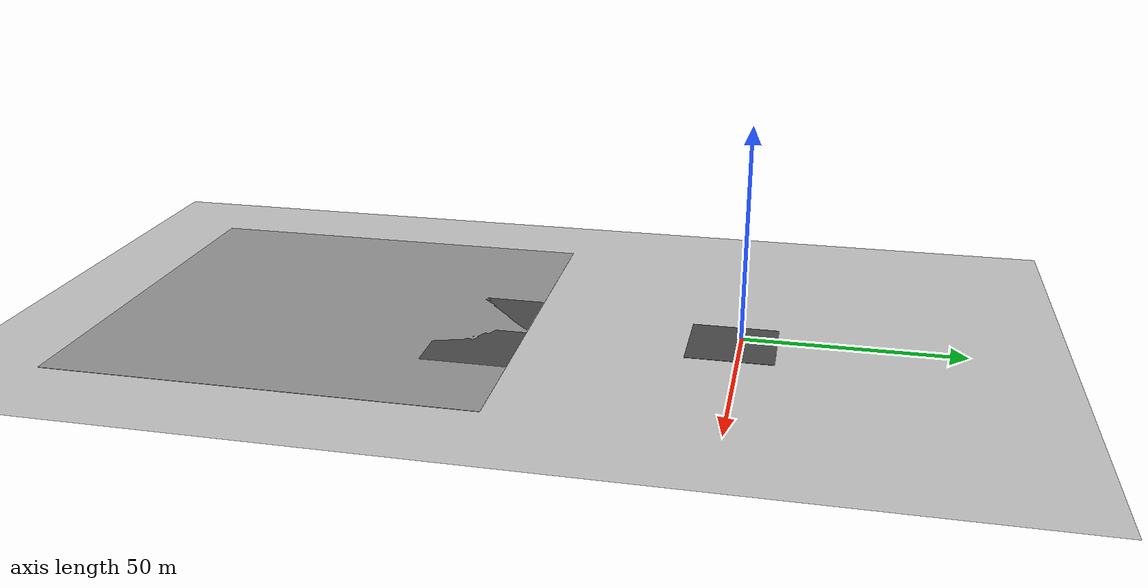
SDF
<sdf version="1.6">
 <world name="default">
  <model name="ground_plane">
   <static>1</static>
   <link name="link">
    <collision name="collision">
     <geometry><plane><normal>0 0 1</normal><size>100 100</size></plane></geometry>
     <surface><friction><ode><mu>100</mu><mu2>50</mu2></ode></friction></surface>
    </collision>
    <visual name="visual">
     <cast_shadows>0</cast_shadows>
     <geometry><plane><normal>0 0 1</normal><size>100 100</size></plane></geometry>
     <material>
      <script><uri>file://media/materials/scripts/gazebo.material</uri><name>Gazebo/Grey</name></script>
     </material>
    </visual>
   </link>
  </model>
  <model name="ground_plane_0">
   <static>1</static>
   <link name="link">
    <collision name="collision">
     <geometry><plane><normal>0 0 1</normal><size>100 100</size></plane></geometry>
     <surface><friction><ode><mu>100</mu><mu2>50</mu2></ode></friction></surface>
    </collision>
    <visual name="visual">
     <cast_shadows>0</cast_shadows>
     <geometry><plane><normal>0 0 1</normal><size>100 100</size></plane></geometry>
     <material>
      <script><uri>file://media/materials/scripts/gazebo.material</uri><name>Gazebo/Grey</name></script>
     </material>
    </visual>
   </link>
   <pose>-0.037273 -99.0745 0 0 -0 0</pose>
  </model>
  <model name="asphalt_plane">
   <static>1</static>
   <link name="link">
    <collision name="collision"><geometry><box><size>20 20 0.1</size></box></geometry></collision>
    <visual name="visual">
     <cast_shadows>0</cast_shadows>
     <geometry><box><size>20 20 0.1</size></box></geometry>
     <material>
      <script>
       <uri>model://asphalt_plane/materials/scripts</uri>
       <uri>model://asphalt_plane/materials/textures</uri>
       <name>vrc/asphalt</name>
      </script>
     </material>
    </visual>
   </link>
   <pose>3.33156 -1.84021 0 0 -0 0</pose>
  </model>
  <model name="asphalt_plane_18">
   <static>1</static>
   <link name="link">
    <collision name="collision"><geometry><box><size>20 20 0.1</size></box></geometry></collision>
    <visual name="visual">
     <cast_shadows>0</cast_shadows>
     <geometry><box><size>20 20 0.1</size></box></geometry>
     <material>
      <script>
       <uri>model://asphalt_plane/materials/scripts</uri>
       <uri>model://asphalt_plane/materials/textures</uri>
       <name>vrc/asphalt</name>
      </script>
     </material>
    </visual>
   </link>
   <pose>-2.55293 -59.3152 0 0 -0 0</pose>
  </model>
  <model name="asphalt_plane_19">
   <static>1</static>
   <link name="link">
    <collision name="collision"><geometry><box><size>20 20 0.1</size></box></geometry></collision>
    <visual name="visual">
     <cast_shadows>0</cast_shadows>
     <geometry><box><size>20 20 0.1</size></box></geometry>
     <material>
      <script>
       <uri>model://asphalt_plane/materials/scripts</uri>
       <uri>model://asphalt_plane/materials/textures</uri>
       <name>vrc/asphalt</name>
      </script>
     </material>
    </visual>
   </link>
   <pose>17.2603 -59.1135 0 0 -0 0</pose>
  </model>
 </world>
</sdf>
